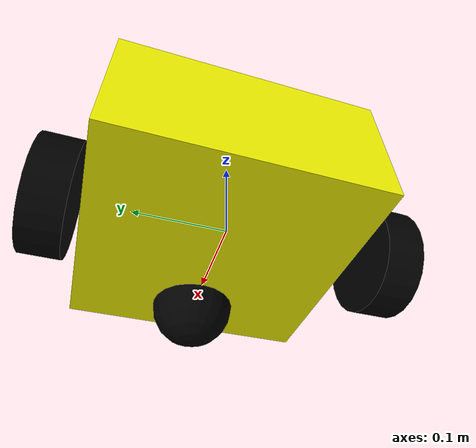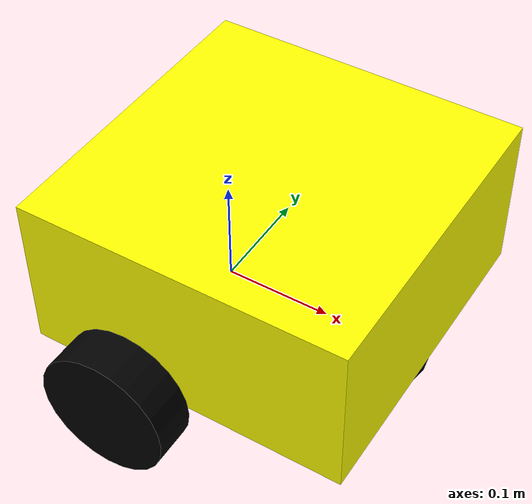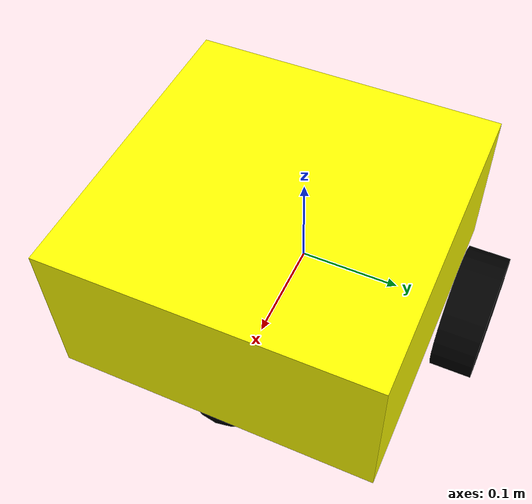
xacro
<?xml version="1.0"?>
<robot xmlns:xacro="http://www.ros.org/wiki/xacro">

    <!--Inertial macros file included-->
    <xacro:include filename="inertial_macros.xacro" />

    <!-- Defining the colors -->
    <material name="black">
        <color rgba="0 0 0 1"/>
    </material>

    <material name="white">
        <color rgba="1 1 1 1"/>
    </material>

    <material name="red">
        <color rgba="1 0 0 1"/>
    </material>

    <material name="green">
        <color rgba="0 1 0 1"/>
    </material>

    <material name="yellow">
        <color rgba="1 1 0 1"/>
    </material>

    <!--BASE_LINK-->
    <link name="base_link"> </link>

    <!--BASE_FOOTPRINT LINK-->
    <link name="base_footprint"> </link>
    <joint name="base_footprint_joint" type="fixed">
        <origin xyz="0 0 0" rpy="0 0 0"/>
        <parent link="base_link"/>
        <child link="base_footprint"/>
    </joint>

    <!--CHASSIS_LINK-->
    <joint name="chassis_joint" type="fixed">
        <origin xyz="-0.1 0 0" rpy="0 0 0"/>
        <parent link="base_link"/>
        <child link="chassis_link"/>
    </joint>

    <link name="chassis_link">
        <visual>
            <origin xyz="0.15 0 0.075"/>
            <geometry>
                <box size="0.3 0.3 0.15"/>
            </geometry>
            <material name="yellow"/>
        </visual>
        <collision>
            <origin xyz="0.15 0 0.075"/>
            <geometry>
                <box size="0.3 0.3 0.15"/>
            </geometry>
        </collision>
        <xacro:inertial_box mass="0.5" x="0.3" y="0.3" z="0.15">
            <origin xyz="0.15 0 0.075" rpy="0 0 0" />
        </xacro:inertial_box>
    </link>
    <gazebo reference="chassis_link">
        <material>Gazebo/Yellow</material>
    </gazebo>

    <!--LEFT WHEEL LINK-->
    <link name="left_wheel">
        <visual>
            <origin xyz="0 0.0 0" rpy="${pi/2} 0 0"/>
            <geometry>
                <cylinder radius="0.06" length="0.04"/>
            </geometry>
            <material name="black"/>
        </visual>
        <collision>
            <origin xyz="0 0.0 0" rpy="${pi/2} 0 0"/>
            <geometry>
                <cylinder radius="0.06" length="0.04"/>
            </geometry>
        </collision>
        <xacro:inertial_cylinder mass="0.1" length="0.04" radius="0.06">
            <origin xyz="0 0 0" rpy="0 0 0" />
        </xacro:inertial_cylinder>
    </link>
    <gazebo reference="left_wheel">
        <material>Gazebo/Black</material>
    </gazebo>

    <joint name="left_wheel_joint" type="continuous">
        <origin xyz="0 0.175 0" rpy="0 0 0"/>
        <parent link="base_link"/>
        <child link="left_wheel"/>
        <axis xyz="0 1 0"/>
    </joint>

    <!--RIGHT WHEEL LINK-->

    <link name="right_wheel">
        <visual>
            <origin xyz="0 0.0 0" rpy="${pi/2} 0 0"/>
            <geometry>
                <cylinder radius="0.06" length="0.04"/>
            </geometry>
            <material name="black"/>
        </visual>
        <collision>
            <origin xyz="0 0.0 0" rpy="${pi/2} 0 0"/>
            <geometry>
                <cylinder radius="0.06" length="0.04"/>
            </geometry>
        </collision>
        <xacro:inertial_cylinder mass="0.1" length="0.04" radius="0.06">
            <origin xyz="0 0.0 0" rpy="0 0 0" />
        </xacro:inertial_cylinder>
    </link>
    <gazebo reference="right_wheel">
        <material>Gazebo/Black</material>
    </gazebo>

    <joint name="right_wheel_joint" type="continuous">
        <origin xyz="0 -0.175 0" rpy="0 0 0"/>
        <parent link="base_link"/>
        <child link="right_wheel"/>
        <axis xyz="0 1 0"/>
    </joint>

    <!--CASTER WHEEL LINK-->
    <link name="caster_wheel">
        <visual>
            <origin xyz="0 0 0" rpy="0 0 0"/>
            <geometry>
                <sphere radius="0.05"/>
            </geometry>
            <material name="black"/>
        </visual>
        <collision>
            <origin xyz="0 0 0" rpy="0 0 0"/>
            <geometry>
                <sphere radius="0.05"/>
            </geometry>
        </collision>
        <xacro:inertial_sphere mass="0.1" radius="0.05">
            <origin xyz="0 0 0" rpy="0 0 0" />
        </xacro:inertial_sphere>
    </link>
    <gazebo reference="caster_wheel">
        <material>Gazebo/Black</material>
        <mu1 value="0.001"/>
        <mu2 value="0.001"/>
    </gazebo>
    <joint name="caster_wheel_joint" type="fixed">
        <origin xyz="0.15 0 0" rpy="0 0 0"/>
        <parent link="base_link"/>
        <child link="caster_wheel"/>

    </joint>

</robot>
